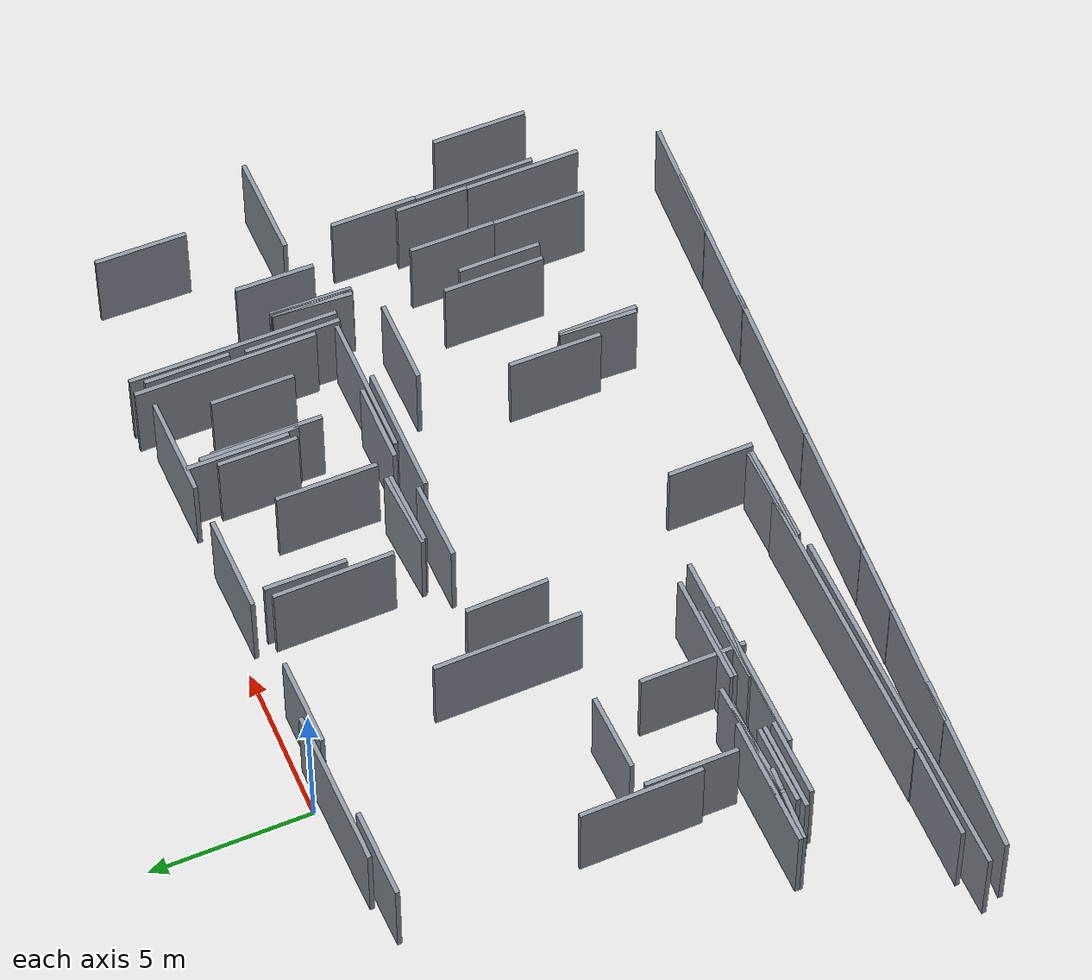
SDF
<sdf version="1.9">
 <world name="qianli_bupt_shahe_public_teaching_floor1_approx">
  <model name="plan_wall_002">
   <static>true</static>
   <pose>-4.540 -15.910 1.400 0 0 0.017359</pose>
   <link name="link">
    <collision name="collision"><geometry><box><size>11.522 0.140 2.800</size></box></geometry></collision>
    <visual name="visual">
     <geometry><box><size>11.522 0.140 2.800</size></box></geometry>
     <material><ambient>0.55 0.58 0.62 1</ambient><diffuse>0.55 0.58 0.62 1</diffuse></material>
    </visual>
   </link>
  </model>
  <model name="plan_wall_005">
   <static>true</static>
   <pose>-1.580 -15.610 1.400 0 0 0.017314</pose>
   <link name="link">
    <collision name="collision"><geometry><box><size>9.241 0.140 2.800</size></box></geometry></collision>
    <visual name="visual">
     <geometry><box><size>9.241 0.140 2.800</size></box></geometry>
     <material><ambient>0.55 0.58 0.62 1</ambient><diffuse>0.55 0.58 0.62 1</diffuse></material>
    </visual>
   </link>
  </model>
  <model name="plan_wall_010">
   <static>true</static>
   <pose>14.200 -3.170 1.400 0 0 1.570796</pose>
   <link name="link">
    <collision name="collision"><geometry><box><size>6.520 0.140 2.800</size></box></geometry></collision>
    <visual name="visual">
     <geometry><box><size>6.520 0.140 2.800</size></box></geometry>
     <material><ambient>0.55 0.58 0.62 1</ambient><diffuse>0.55 0.58 0.62 1</diffuse></material>
    </visual>
   </link>
  </model>
  <model name="plan_wall_017">
   <static>true</static>
   <pose>-7.170 -16.790 1.400 0 0 -0.049083</pose>
   <link name="link">
    <collision name="collision"><geometry><box><size>5.707 0.140 2.800</size></box></geometry></collision>
    <visual name="visual">
     <geometry><box><size>5.707 0.140 2.800</size></box></geometry>
     <material><ambient>0.55 0.58 0.62 1</ambient><diffuse>0.55 0.58 0.62 1</diffuse></material>
    </visual>
   </link>
  </model>
  <model name="plan_wall_018">
   <static>true</static>
   <pose>13.700 -2.730 1.400 0 0 1.570796</pose>
   <link name="link">
    <collision name="collision"><geometry><box><size>5.680 0.140 2.800</size></box></geometry></collision>
    <visual name="visual">
     <geometry><box><size>5.680 0.140 2.800</size></box></geometry>
     <material><ambient>0.55 0.58 0.62 1</ambient><diffuse>0.55 0.58 0.62 1</diffuse></material>
    </visual>
   </link>
  </model>
  <model name="plan_wall_020">
   <static>true</static>
   <pose>12.290 -17.680 1.400 0 0 -0.048651</pose>
   <link name="link">
    <collision name="collision"><geometry><box><size>5.346 0.140 2.800</size></box></geometry></collision>
    <visual name="visual">
     <geometry><box><size>5.346 0.140 2.800</size></box></geometry>
     <material><ambient>0.55 0.58 0.62 1</ambient><diffuse>0.55 0.58 0.62 1</diffuse></material>
    </visual>
   </link>
  </model>
  <model name="plan_wall_021">
   <static>true</static>
   <pose>3.110 -17.260 1.400 0 0 -0.048651</pose>
   <link name="link">
    <collision name="collision"><geometry><box><size>5.346 0.140 2.800</size></box></geometry></collision>
    <visual name="visual">
     <geometry><box><size>5.346 0.140 2.800</size></box></geometry>
     <material><ambient>0.55 0.58 0.62 1</ambient><diffuse>0.55 0.58 0.62 1</diffuse></material>
    </visual>
   </link>
  </model>
  <model name="plan_wall_022">
   <static>true</static>
   <pose>-3.020 -16.980 1.400 0 0 -0.048833</pose>
   <link name="link">
    <collision name="collision"><geometry><box><size>5.326 0.140 2.800</size></box></geometry></collision>
    <visual name="visual">
     <geometry><box><size>5.326 0.140 2.800</size></box></geometry>
     <material><ambient>0.55 0.58 0.62 1</ambient><diffuse>0.55 0.58 0.62 1</diffuse></material>
    </visual>
   </link>
  </model>
  <model name="plan_wall_024">
   <static>true</static>
   <pose>7.460 -17.460 1.400 0 0 -0.048833</pose>
   <link name="link">
    <collision name="collision"><geometry><box><size>5.326 0.140 2.800</size></box></geometry></collision>
    <visual name="visual">
     <geometry><box><size>5.326 0.140 2.800</size></box></geometry>
     <material><ambient>0.55 0.58 0.62 1</ambient><diffuse>0.55 0.58 0.62 1</diffuse></material>
    </visual>
   </link>
  </model>
  <model name="plan_wall_029">
   <static>true</static>
   <pose>-1.050 -0.310 1.400 0 0 0.016063</pose>
   <link name="link">
    <collision name="collision"><geometry><box><size>4.981 0.140 2.800</size></box></geometry></collision>
    <visual name="visual">
     <geometry><box><size>4.981 0.140 2.800</size></box></geometry>
     <material><ambient>0.55 0.58 0.62 1</ambient><diffuse>0.55 0.58 0.62 1</diffuse></material>
    </visual>
   </link>
  </model>
  <model name="plan_wall_032">
   <static>true</static>
   <pose>-2.150 -12.530 1.400 0 0 0.016459</pose>
   <link name="link">
    <collision name="collision"><geometry><box><size>4.861 0.140 2.800</size></box></geometry></collision>
    <visual name="visual">
     <geometry><box><size>4.861 0.140 2.800</size></box></geometry>
     <material><ambient>0.55 0.58 0.62 1</ambient><diffuse>0.55 0.58 0.62 1</diffuse></material>
    </visual>
   </link>
  </model>
  <model name="plan_wall_034">
   <static>true</static>
   <pose>11.410 -6.250 1.400 0 0 0.000000</pose>
   <link name="link">
    <collision name="collision"><geometry><box><size>4.620 0.140 2.800</size></box></geometry></collision>
    <visual name="visual">
     <geometry><box><size>4.620 0.140 2.800</size></box></geometry>
     <material><ambient>0.55 0.58 0.62 1</ambient><diffuse>0.55 0.58 0.62 1</diffuse></material>
    </visual>
   </link>
  </model>
  <model name="plan_wall_036">
   <static>true</static>
   <pose>1.560 -6.600 1.400 0 0 -1.553331</pose>
   <link name="link">
    <collision name="collision"><geometry><box><size>4.581 0.140 2.800</size></box></geometry></collision>
    <visual name="visual">
     <geometry><box><size>4.581 0.140 2.800</size></box></geometry>
     <material><ambient>0.55 0.58 0.62 1</ambient><diffuse>0.55 0.58 0.62 1</diffuse></material>
    </visual>
   </link>
  </model>
  <model name="plan_wall_042">
   <static>true</static>
   <pose>0.490 -17.140 1.400 0 0 -0.049287</pose>
   <link name="link">
    <collision name="collision"><geometry><box><size>4.465 0.140 2.800</size></box></geometry></collision>
    <visual name="visual">
     <geometry><box><size>4.465 0.140 2.800</size></box></geometry>
     <material><ambient>0.55 0.58 0.62 1</ambient><diffuse>0.55 0.58 0.62 1</diffuse></material>
    </visual>
   </link>
  </model>
  <model name="plan_wall_045">
   <static>true</static>
   <pose>-2.390 -12.500 1.400 0 0 0.013698</pose>
   <link name="link">
    <collision name="collision"><geometry><box><size>4.380 0.140 2.800</size></box></geometry></collision>
    <visual name="visual">
     <geometry><box><size>4.380 0.140 2.800</size></box></geometry>
     <material><ambient>0.55 0.58 0.62 1</ambient><diffuse>0.55 0.58 0.62 1</diffuse></material>
    </visual>
   </link>
  </model>
  <model name="plan_wall_049">
   <static>true</static>
   <pose>9.550 -6.510 1.400 0 0 0.000000</pose>
   <link name="link">
    <collision name="collision"><geometry><box><size>4.180 0.140 2.800</size></box></geometry></collision>
    <visual name="visual">
     <geometry><box><size>4.180 0.140 2.800</size></box></geometry>
     <material><ambient>0.55 0.58 0.62 1</ambient><diffuse>0.55 0.58 0.62 1</diffuse></material>
    </visual>
   </link>
  </model>
  <model name="plan_wall_051">
   <static>true</static>
   <pose>-0.140 -12.400 1.400 0 0 0.014422</pose>
   <link name="link">
    <collision name="collision"><geometry><box><size>4.160 0.140 2.800</size></box></geometry></collision>
    <visual name="visual">
     <geometry><box><size>4.160 0.140 2.800</size></box></geometry>
     <material><ambient>0.55 0.58 0.62 1</ambient><diffuse>0.55 0.58 0.62 1</diffuse></material>
    </visual>
   </link>
  </model>
  <model name="plan_wall_052">
   <static>true</static>
   <pose>-5.550 -11.480 1.400 0 0 0.014492</pose>
   <link name="link">
    <collision name="collision"><geometry><box><size>4.140 0.140 2.800</size></box></geometry></collision>
    <visual name="visual">
     <geometry><box><size>4.140 0.140 2.800</size></box></geometry>
     <material><ambient>0.55 0.58 0.62 1</ambient><diffuse>0.55 0.58 0.62 1</diffuse></material>
    </visual>
   </link>
  </model>
  <model name="plan_wall_056">
   <static>true</static>
   <pose>14.700 -17.790 1.400 0 0 -0.049465</pose>
   <link name="link">
    <collision name="collision"><geometry><box><size>4.045 0.140 2.800</size></box></geometry></collision>
    <visual name="visual">
     <geometry><box><size>4.045 0.140 2.800</size></box></geometry>
     <material><ambient>0.55 0.58 0.62 1</ambient><diffuse>0.55 0.58 0.62 1</diffuse></material>
    </visual>
   </link>
  </model>
  <model name="plan_wall_062">
   <static>true</static>
   <pose>-4.160 -11.590 1.400 0 0 0.052583</pose>
   <link name="link">
    <collision name="collision"><geometry><box><size>3.805 0.140 2.800</size></box></geometry></collision>
    <visual name="visual">
     <geometry><box><size>3.805 0.140 2.800</size></box></geometry>
     <material><ambient>0.55 0.58 0.62 1</ambient><diffuse>0.55 0.58 0.62 1</diffuse></material>
    </visual>
   </link>
  </model>
  <model name="plan_wall_063">
   <static>true</static>
   <pose>-4.510 -8.080 1.400 0 0 -1.554925</pose>
   <link name="link">
    <collision name="collision"><geometry><box><size>3.780 0.140 2.800</size></box></geometry></collision>
    <visual name="visual">
     <geometry><box><size>3.780 0.140 2.800</size></box></geometry>
     <material><ambient>0.55 0.58 0.62 1</ambient><diffuse>0.55 0.58 0.62 1</diffuse></material>
    </visual>
   </link>
  </model>
  <model name="plan_wall_064">
   <static>true</static>
   <pose>17.220 -12.060 1.400 0 0 1.570796</pose>
   <link name="link">
    <collision name="collision"><geometry><box><size>3.780 0.140 2.800</size></box></geometry></collision>
    <visual name="visual">
     <geometry><box><size>3.780 0.140 2.800</size></box></geometry>
     <material><ambient>0.55 0.58 0.62 1</ambient><diffuse>0.55 0.58 0.62 1</diffuse></material>
    </visual>
   </link>
  </model>
  <model name="plan_wall_065">
   <static>true</static>
   <pose>5.570 -2.900 1.400 0 0 -1.554755</pose>
   <link name="link">
    <collision name="collision"><geometry><box><size>3.740 0.140 2.800</size></box></geometry></collision>
    <visual name="visual">
     <geometry><box><size>3.740 0.140 2.800</size></box></geometry>
     <material><ambient>0.55 0.58 0.62 1</ambient><diffuse>0.55 0.58 0.62 1</diffuse></material>
    </visual>
   </link>
  </model>
  <model name="plan_wall_070">
   <static>true</static>
   <pose>16.980 -13.530 1.400 0 0 1.570796</pose>
   <link name="link">
    <collision name="collision"><geometry><box><size>3.600 0.140 2.800</size></box></geometry></collision>
    <visual name="visual">
     <geometry><box><size>3.600 0.140 2.800</size></box></geometry>
     <material><ambient>0.55 0.58 0.62 1</ambient><diffuse>0.55 0.58 0.62 1</diffuse></material>
    </visual>
   </link>
  </model>
  <model name="plan_wall_076">
   <static>true</static>
   <pose>-0.280 -11.900 1.400 0 0 0.017044</pose>
   <link name="link">
    <collision name="collision"><geometry><box><size>3.521 0.140 2.800</size></box></geometry></collision>
    <visual name="visual">
     <geometry><box><size>3.521 0.140 2.800</size></box></geometry>
     <material><ambient>0.55 0.58 0.62 1</ambient><diffuse>0.55 0.58 0.62 1</diffuse></material>
    </visual>
   </link>
  </model>
  <model name="plan_wall_082">
   <static>true</static>
   <pose>10.840 -2.900 1.400 0 0 1.570796</pose>
   <link name="link">
    <collision name="collision"><geometry><box><size>3.460 0.140 2.800</size></box></geometry></collision>
    <visual name="visual">
     <geometry><box><size>3.460 0.140 2.800</size></box></geometry>
     <material><ambient>0.55 0.58 0.62 1</ambient><diffuse>0.55 0.58 0.62 1</diffuse></material>
    </visual>
   </link>
  </model>
  <model name="plan_wall_089">
   <static>true</static>
   <pose>18.730 -5.910 1.400 0 0 0.012121</pose>
   <link name="link">
    <collision name="collision"><geometry><box><size>3.300 0.140 2.800</size></box></geometry></collision>
    <visual name="visual">
     <geometry><box><size>3.300 0.140 2.800</size></box></geometry>
     <material><ambient>0.55 0.58 0.62 1</ambient><diffuse>0.55 0.58 0.62 1</diffuse></material>
    </visual>
   </link>
  </model>
  <model name="plan_wall_091">
   <static>true</static>
   <pose>17.000 -11.120 1.400 0 0 1.570796</pose>
   <link name="link">
    <collision name="collision"><geometry><box><size>3.300 0.140 2.800</size></box></geometry></collision>
    <visual name="visual">
     <geometry><box><size>3.300 0.140 2.800</size></box></geometry>
     <material><ambient>0.55 0.58 0.62 1</ambient><diffuse>0.55 0.58 0.62 1</diffuse></material>
    </visual>
   </link>
  </model>
  <model name="plan_wall_093">
   <static>true</static>
   <pose>-4.430 -11.540 1.400 0 0 -0.018403</pose>
   <link name="link">
    <collision name="collision"><geometry><box><size>3.261 0.140 2.800</size></box></geometry></collision>
    <visual name="visual">
     <geometry><box><size>3.261 0.140 2.800</size></box></geometry>
     <material><ambient>0.55 0.58 0.62 1</ambient><diffuse>0.55 0.58 0.62 1</diffuse></material>
    </visual>
   </link>
  </model>
  <model name="plan_wall_094">
   <static>true</static>
   <pose>-1.140 -11.120 1.400 0 0 -1.558527</pose>
   <link name="link">
    <collision name="collision"><geometry><box><size>3.260 0.140 2.800</size></box></geometry></collision>
    <visual name="visual">
     <geometry><box><size>3.260 0.140 2.800</size></box></geometry>
     <material><ambient>0.55 0.58 0.62 1</ambient><diffuse>0.55 0.58 0.62 1</diffuse></material>
    </visual>
   </link>
  </model>
  <model name="plan_wall_096">
   <static>true</static>
   <pose>11.520 -0.330 1.400 0 0 0.012345</pose>
   <link name="link">
    <collision name="collision"><geometry><box><size>3.240 0.140 2.800</size></box></geometry></collision>
    <visual name="visual">
     <geometry><box><size>3.240 0.140 2.800</size></box></geometry>
     <material><ambient>0.55 0.58 0.62 1</ambient><diffuse>0.55 0.58 0.62 1</diffuse></material>
    </visual>
   </link>
  </model>
  <model name="plan_wall_097">
   <static>true</static>
   <pose>3.230 -15.630 1.400 0 0 0.012422</pose>
   <link name="link">
    <collision name="collision"><geometry><box><size>3.220 0.140 2.800</size></box></geometry></collision>
    <visual name="visual">
     <geometry><box><size>3.220 0.140 2.800</size></box></geometry>
     <material><ambient>0.55 0.58 0.62 1</ambient><diffuse>0.55 0.58 0.62 1</diffuse></material>
    </visual>
   </link>
  </model>
  <model name="plan_wall_099">
   <static>true</static>
   <pose>10.640 -1.940 1.400 0 0 1.570796</pose>
   <link name="link">
    <collision name="collision"><geometry><box><size>3.180 0.140 2.800</size></box></geometry></collision>
    <visual name="visual">
     <geometry><box><size>3.180 0.140 2.800</size></box></geometry>
     <material><ambient>0.55 0.58 0.62 1</ambient><diffuse>0.55 0.58 0.62 1</diffuse></material>
    </visual>
   </link>
  </model>
  <model name="plan_wall_100">
   <static>true</static>
   <pose>13.680 -11.230 1.400 0 0 1.570796</pose>
   <link name="link">
    <collision name="collision"><geometry><box><size>3.160 0.140 2.800</size></box></geometry></collision>
    <visual name="visual">
     <geometry><box><size>3.160 0.140 2.800</size></box></geometry>
     <material><ambient>0.55 0.58 0.62 1</ambient><diffuse>0.55 0.58 0.62 1</diffuse></material>
    </visual>
   </link>
  </model>
  <model name="plan_wall_102">
   <static>true</static>
   <pose>8.640 -3.910 1.400 0 0 1.570796</pose>
   <link name="link">
    <collision name="collision"><geometry><box><size>3.160 0.140 2.800</size></box></geometry></collision>
    <visual name="visual">
     <geometry><box><size>3.160 0.140 2.800</size></box></geometry>
     <material><ambient>0.55 0.58 0.62 1</ambient><diffuse>0.55 0.58 0.62 1</diffuse></material>
    </visual>
   </link>
  </model>
  <model name="plan_wall_107">
   <static>true</static>
   <pose>7.050 -0.390 1.400 0 0 0.012903</pose>
   <link name="link">
    <collision name="collision"><geometry><box><size>3.100 0.140 2.800</size></box></geometry></collision>
    <visual name="visual">
     <geometry><box><size>3.100 0.140 2.800</size></box></geometry>
     <material><ambient>0.55 0.58 0.62 1</ambient><diffuse>0.55 0.58 0.62 1</diffuse></material>
    </visual>
   </link>
  </model>
  <model name="plan_wall_108">
   <static>true</static>
   <pose>10.780 -2.340 1.400 0 0 1.570796</pose>
   <link name="link">
    <collision name="collision"><geometry><box><size>3.060 0.140 2.800</size></box></geometry></collision>
    <visual name="visual">
     <geometry><box><size>3.060 0.140 2.800</size></box></geometry>
     <material><ambient>0.55 0.58 0.62 1</ambient><diffuse>0.55 0.58 0.62 1</diffuse></material>
    </visual>
   </link>
  </model>
  <model name="plan_wall_111">
   <static>true</static>
   <pose>3.320 -15.560 1.400 0 0 0.019997</pose>
   <link name="link">
    <collision name="collision"><geometry><box><size>3.001 0.140 2.800</size></box></geometry></collision>
    <visual name="visual">
     <geometry><box><size>3.001 0.140 2.800</size></box></geometry>
     <material><ambient>0.55 0.58 0.62 1</ambient><diffuse>0.55 0.58 0.62 1</diffuse></material>
    </visual>
   </link>
  </model>
  <model name="plan_wall_114">
   <static>true</static>
   <pose>13.900 -4.920 1.400 0 0 1.570796</pose>
   <link name="link">
    <collision name="collision"><geometry><box><size>2.980 0.140 2.800</size></box></geometry></collision>
    <visual name="visual">
     <geometry><box><size>2.980 0.140 2.800</size></box></geometry>
     <material><ambient>0.55 0.58 0.62 1</ambient><diffuse>0.55 0.58 0.62 1</diffuse></material>
    </visual>
   </link>
  </model>
  <model name="plan_wall_115">
   <static>true</static>
   <pose>18.980 -12.960 1.400 0 0 1.570796</pose>
   <link name="link">
    <collision name="collision"><geometry><box><size>2.980 0.140 2.800</size></box></geometry></collision>
    <visual name="visual">
     <geometry><box><size>2.980 0.140 2.800</size></box></geometry>
     <material><ambient>0.55 0.58 0.62 1</ambient><diffuse>0.55 0.58 0.62 1</diffuse></material>
    </visual>
   </link>
  </model>
  <model name="plan_wall_116">
   <static>true</static>
   <pose>-7.710 -15.710 1.400 0 0 0.000000</pose>
   <link name="link">
    <collision name="collision"><geometry><box><size>2.980 0.140 2.800</size></box></geometry></collision>
    <visual name="visual">
     <geometry><box><size>2.980 0.140 2.800</size></box></geometry>
     <material><ambient>0.55 0.58 0.62 1</ambient><diffuse>0.55 0.58 0.62 1</diffuse></material>
    </visual>
   </link>
  </model>
  <model name="plan_wall_120">
   <static>true</static>
   <pose>15.440 -13.430 1.400 0 0 1.570796</pose>
   <link name="link">
    <collision name="collision"><geometry><box><size>2.920 0.140 2.800</size></box></geometry></collision>
    <visual name="visual">
     <geometry><box><size>2.920 0.140 2.800</size></box></geometry>
     <material><ambient>0.55 0.58 0.62 1</ambient><diffuse>0.55 0.58 0.62 1</diffuse></material>
    </visual>
   </link>
  </model>
  <model name="plan_wall_123">
   <static>true</static>
   <pose>10.420 -11.820 1.400 0 0 1.570796</pose>
   <link name="link">
    <collision name="collision"><geometry><box><size>2.900 0.140 2.800</size></box></geometry></collision>
    <visual name="visual">
     <geometry><box><size>2.900 0.140 2.800</size></box></geometry>
     <material><ambient>0.55 0.58 0.62 1</ambient><diffuse>0.55 0.58 0.62 1</diffuse></material>
    </visual>
   </link>
  </model>
  <model name="plan_wall_125">
   <static>true</static>
   <pose>-4.300 -9.690 1.400 0 0 -1.556908</pose>
   <link name="link">
    <collision name="collision"><geometry><box><size>2.880 0.140 2.800</size></box></geometry></collision>
    <visual name="visual">
     <geometry><box><size>2.880 0.140 2.800</size></box></geometry>
     <material><ambient>0.55 0.58 0.62 1</ambient><diffuse>0.55 0.58 0.62 1</diffuse></material>
    </visual>
   </link>
  </model>
  <model name="plan_wall_129">
   <static>true</static>
   <pose>18.660 -1.940 1.400 0 0 1.556811</pose>
   <link name="link">
    <collision name="collision"><geometry><box><size>2.860 0.140 2.800</size></box></geometry></collision>
    <visual name="visual">
     <geometry><box><size>2.860 0.140 2.800</size></box></geometry>
     <material><ambient>0.55 0.58 0.62 1</ambient><diffuse>0.55 0.58 0.62 1</diffuse></material>
    </visual>
   </link>
  </model>
  <model name="plan_wall_135">
   <static>true</static>
   <pose>-5.290 -12.110 1.400 0 0 0.014183</pose>
   <link name="link">
    <collision name="collision"><geometry><box><size>2.820 0.140 2.800</size></box></geometry></collision>
    <visual name="visual">
     <geometry><box><size>2.820 0.140 2.800</size></box></geometry>
     <material><ambient>0.55 0.58 0.62 1</ambient><diffuse>0.55 0.58 0.62 1</diffuse></material>
    </visual>
   </link>
  </model>
  <model name="plan_wall_136">
   <static>true</static>
   <pose>3.070 -15.650 1.400 0 0 0.014183</pose>
   <link name="link">
    <collision name="collision"><geometry><box><size>2.820 0.140 2.800</size></box></geometry></collision>
    <visual name="visual">
     <geometry><box><size>2.820 0.140 2.800</size></box></geometry>
     <material><ambient>0.55 0.58 0.62 1</ambient><diffuse>0.55 0.58 0.62 1</diffuse></material>
    </visual>
   </link>
  </model>
  <model name="plan_wall_139">
   <static>true</static>
   <pose>1.900 -0.530 1.400 0 0 0.014285</pose>
   <link name="link">
    <collision name="collision"><geometry><box><size>2.800 0.140 2.800</size></box></geometry></collision>
    <visual name="visual">
     <geometry><box><size>2.800 0.140 2.800</size></box></geometry>
     <material><ambient>0.55 0.58 0.62 1</ambient><diffuse>0.55 0.58 0.62 1</diffuse></material>
    </visual>
   </link>
  </model>
  <model name="plan_wall_140">
   <static>true</static>
   <pose>-3.480 -0.610 1.400 0 0 0.014285</pose>
   <link name="link">
    <collision name="collision"><geometry><box><size>2.800 0.140 2.800</size></box></geometry></collision>
    <visual name="visual">
     <geometry><box><size>2.800 0.140 2.800</size></box></geometry>
     <material><ambient>0.55 0.58 0.62 1</ambient><diffuse>0.55 0.58 0.62 1</diffuse></material>
    </visual>
   </link>
  </model>
  <model name="plan_wall_147">
   <static>true</static>
   <pose>12.470 -7.770 1.400 0 0 0.000000</pose>
   <link name="link">
    <collision name="collision"><geometry><box><size>2.740 0.140 2.800</size></box></geometry></collision>
    <visual name="visual">
     <geometry><box><size>2.740 0.140 2.800</size></box></geometry>
     <material><ambient>0.55 0.58 0.62 1</ambient><diffuse>0.55 0.58 0.62 1</diffuse></material>
    </visual>
   </link>
  </model>
  <model name="plan_wall_150">
   <static>true</static>
   <pose>17.240 -8.820 1.400 0 0 1.570796</pose>
   <link name="link">
    <collision name="collision"><geometry><box><size>2.700 0.140 2.800</size></box></geometry></collision>
    <visual name="visual">
     <geometry><box><size>2.700 0.140 2.800</size></box></geometry>
     <material><ambient>0.55 0.58 0.62 1</ambient><diffuse>0.55 0.58 0.62 1</diffuse></material>
    </visual>
   </link>
  </model>
  <model name="plan_wall_154">
   <static>true</static>
   <pose>15.460 -10.630 1.400 0 0 1.570796</pose>
   <link name="link">
    <collision name="collision"><geometry><box><size>2.680 0.140 2.800</size></box></geometry></collision>
    <visual name="visual">
     <geometry><box><size>2.680 0.140 2.800</size></box></geometry>
     <material><ambient>0.55 0.58 0.62 1</ambient><diffuse>0.55 0.58 0.62 1</diffuse></material>
    </visual>
   </link>
  </model>
  <model name="plan_wall_156">
   <static>true</static>
   <pose>5.040 -14.420 1.400 0 0 -1.555760</pose>
   <link name="link">
    <collision name="collision"><geometry><box><size>2.660 0.140 2.800</size></box></geometry></collision>
    <visual name="visual">
     <geometry><box><size>2.660 0.140 2.800</size></box></geometry>
     <material><ambient>0.55 0.58 0.62 1</ambient><diffuse>0.55 0.58 0.62 1</diffuse></material>
    </visual>
   </link>
  </model>
  <model name="plan_wall_159">
   <static>true</static>
   <pose>14.000 -1.640 1.400 0 0 1.570796</pose>
   <link name="link">
    <collision name="collision"><geometry><box><size>2.660 0.140 2.800</size></box></geometry></collision>
    <visual name="visual">
     <geometry><box><size>2.660 0.140 2.800</size></box></geometry>
     <material><ambient>0.55 0.58 0.62 1</ambient><diffuse>0.55 0.58 0.62 1</diffuse></material>
    </visual>
   </link>
  </model>
  <model name="plan_wall_171">
   <static>true</static>
   <pose>12.540 -3.130 1.400 0 0 1.570796</pose>
   <link name="link">
    <collision name="collision"><geometry><box><size>2.600 0.140 2.800</size></box></geometry></collision>
    <visual name="visual">
     <geometry><box><size>2.600 0.140 2.800</size></box></geometry>
     <material><ambient>0.55 0.58 0.62 1</ambient><diffuse>0.55 0.58 0.62 1</diffuse></material>
    </visual>
   </link>
  </model>
  <model name="plan_wall_178">
   <static>true</static>
   <pose>14.200 -11.620 1.400 0 0 1.570796</pose>
   <link name="link">
    <collision name="collision"><geometry><box><size>2.580 0.140 2.800</size></box></geometry></collision>
    <visual name="visual">
     <geometry><box><size>2.580 0.140 2.800</size></box></geometry>
     <material><ambient>0.55 0.58 0.62 1</ambient><diffuse>0.55 0.58 0.62 1</diffuse></material>
    </visual>
   </link>
  </model>
  <model name="plan_wall_179">
   <static>true</static>
   <pose>2.980 -7.170 1.400 0 0 -1.539556</pose>
   <link name="link">
    <collision name="collision"><geometry><box><size>2.561 0.140 2.800</size></box></geometry></collision>
    <visual name="visual">
     <geometry><box><size>2.561 0.140 2.800</size></box></geometry>
     <material><ambient>0.55 0.58 0.62 1</ambient><diffuse>0.55 0.58 0.62 1</diffuse></material>
    </visual>
   </link>
  </model>
  <model name="plan_wall_181">
   <static>true</static>
   <pose>14.860 -5.870 1.400 0 0 1.555173</pose>
   <link name="link">
    <collision name="collision"><geometry><box><size>2.560 0.140 2.800</size></box></geometry></collision>
    <visual name="visual">
     <geometry><box><size>2.560 0.140 2.800</size></box></geometry>
     <material><ambient>0.55 0.58 0.62 1</ambient><diffuse>0.55 0.58 0.62 1</diffuse></material>
    </visual>
   </link>
  </model>
  <model name="plan_wall_182">
   <static>true</static>
   <pose>10.000 -6.070 1.400 0 0 0.000000</pose>
   <link name="link">
    <collision name="collision"><geometry><box><size>2.560 0.140 2.800</size></box></geometry></collision>
    <visual name="visual">
     <geometry><box><size>2.560 0.140 2.800</size></box></geometry>
     <material><ambient>0.55 0.58 0.62 1</ambient><diffuse>0.55 0.58 0.62 1</diffuse></material>
    </visual>
   </link>
  </model>
  <model name="plan_wall_185">
   <static>true</static>
   <pose>14.780 -5.880 1.400 0 0 1.539311</pose>
   <link name="link">
    <collision name="collision"><geometry><box><size>2.541 0.140 2.800</size></box></geometry></collision>
    <visual name="visual">
     <geometry><box><size>2.541 0.140 2.800</size></box></geometry>
     <material><ambient>0.55 0.58 0.62 1</ambient><diffuse>0.55 0.58 0.62 1</diffuse></material>
    </visual>
   </link>
  </model>
  <model name="plan_wall_186">
   <static>true</static>
   <pose>6.170 -6.290 1.400 0 0 0.015747</pose>
   <link name="link">
    <collision name="collision"><geometry><box><size>2.540 0.140 2.800</size></box></geometry></collision>
    <visual name="visual">
     <geometry><box><size>2.540 0.140 2.800</size></box></geometry>
     <material><ambient>0.55 0.58 0.62 1</ambient><diffuse>0.55 0.58 0.62 1</diffuse></material>
    </visual>
   </link>
  </model>
  <model name="plan_wall_187">
   <static>true</static>
   <pose>-5.170 -11.950 1.400 0 0 0.015747</pose>
   <link name="link">
    <collision name="collision"><geometry><box><size>2.540 0.140 2.800</size></box></geometry></collision>
    <visual name="visual">
     <geometry><box><size>2.540 0.140 2.800</size></box></geometry>
     <material><ambient>0.55 0.58 0.62 1</ambient><diffuse>0.55 0.58 0.62 1</diffuse></material>
    </visual>
   </link>
  </model>
  <model name="plan_wall_188">
   <static>true</static>
   <pose>5.880 -2.160 1.400 0 0 1.570796</pose>
   <link name="link">
    <collision name="collision"><geometry><box><size>2.540 0.140 2.800</size></box></geometry></collision>
    <visual name="visual">
     <geometry><box><size>2.540 0.140 2.800</size></box></geometry>
     <material><ambient>0.55 0.58 0.62 1</ambient><diffuse>0.55 0.58 0.62 1</diffuse></material>
    </visual>
   </link>
  </model>
  <model name="plan_wall_192">
   <static>true</static>
   <pose>6.850 -5.600 1.400 0 0 0.055942</pose>
   <link name="link">
    <collision name="collision"><geometry><box><size>2.504 0.140 2.800</size></box></geometry></collision>
    <visual name="visual">
     <geometry><box><size>2.504 0.140 2.800</size></box></geometry>
     <material><ambient>0.55 0.58 0.62 1</ambient><diffuse>0.55 0.58 0.62 1</diffuse></material>
    </visual>
   </link>
  </model>
  <model name="plan_wall_193">
   <static>true</static>
   <pose>-5.090 -12.410 1.400 0 0 0.015999</pose>
   <link name="link">
    <collision name="collision"><geometry><box><size>2.500 0.140 2.800</size></box></geometry></collision>
    <visual name="visual">
     <geometry><box><size>2.500 0.140 2.800</size></box></geometry>
     <material><ambient>0.55 0.58 0.62 1</ambient><diffuse>0.55 0.58 0.62 1</diffuse></material>
    </visual>
   </link>
  </model>
  <model name="plan_wall_194">
   <static>true</static>
   <pose>10.920 -13.400 1.400 0 0 -1.554798</pose>
   <link name="link">
    <collision name="collision"><geometry><box><size>2.500 0.140 2.800</size></box></geometry></collision>
    <visual name="visual">
     <geometry><box><size>2.500 0.140 2.800</size></box></geometry>
     <material><ambient>0.55 0.58 0.62 1</ambient><diffuse>0.55 0.58 0.62 1</diffuse></material>
    </visual>
   </link>
  </model>
  <model name="plan_wall_198">
   <static>true</static>
   <pose>14.730 -5.870 1.400 0 0 1.514405</pose>
   <link name="link">
    <collision name="collision"><geometry><box><size>2.484 0.140 2.800</size></box></geometry></collision>
    <visual name="visual">
     <geometry><box><size>2.484 0.140 2.800</size></box></geometry>
     <material><ambient>0.55 0.58 0.62 1</ambient><diffuse>0.55 0.58 0.62 1</diffuse></material>
    </visual>
   </link>
  </model>
  <model name="plan_wall_202">
   <static>true</static>
   <pose>10.420 -2.470 1.400 0 0 1.570796</pose>
   <link name="link">
    <collision name="collision"><geometry><box><size>2.480 0.140 2.800</size></box></geometry></collision>
    <visual name="visual">
     <geometry><box><size>2.480 0.140 2.800</size></box></geometry>
     <material><ambient>0.55 0.58 0.62 1</ambient><diffuse>0.55 0.58 0.62 1</diffuse></material>
    </visual>
   </link>
  </model>
  <model name="plan_wall_205">
   <static>true</static>
   <pose>-2.410 -8.130 1.400 0 0 0.032509</pose>
   <link name="link">
    <collision name="collision"><geometry><box><size>2.461 0.140 2.800</size></box></geometry></collision>
    <visual name="visual">
     <geometry><box><size>2.461 0.140 2.800</size></box></geometry>
     <material><ambient>0.55 0.58 0.62 1</ambient><diffuse>0.55 0.58 0.62 1</diffuse></material>
    </visual>
   </link>
  </model>
  <model name="plan_wall_208">
   <static>true</static>
   <pose>16.080 -5.200 1.400 0 0 1.554538</pose>
   <link name="link">
    <collision name="collision"><geometry><box><size>2.460 0.140 2.800</size></box></geometry></collision>
    <visual name="visual">
     <geometry><box><size>2.460 0.140 2.800</size></box></geometry>
     <material><ambient>0.55 0.58 0.62 1</ambient><diffuse>0.55 0.58 0.62 1</diffuse></material>
    </visual>
   </link>
  </model>
  <model name="plan_wall_210">
   <static>true</static>
   <pose>10.840 -13.370 1.400 0 0 1.538021</pose>
   <link name="link">
    <collision name="collision"><geometry><box><size>2.441 0.140 2.800</size></box></geometry></collision>
    <visual name="visual">
     <geometry><box><size>2.441 0.140 2.800</size></box></geometry>
     <material><ambient>0.55 0.58 0.62 1</ambient><diffuse>0.55 0.58 0.62 1</diffuse></material>
    </visual>
   </link>
  </model>
  <model name="plan_wall_211">
   <static>true</static>
   <pose>-6.410 -11.670 1.400 0 0 -0.049546</pose>
   <link name="link">
    <collision name="collision"><geometry><box><size>2.423 0.140 2.800</size></box></geometry></collision>
    <visual name="visual">
     <geometry><box><size>2.423 0.140 2.800</size></box></geometry>
     <material><ambient>0.55 0.58 0.62 1</ambient><diffuse>0.55 0.58 0.62 1</diffuse></material>
    </visual>
   </link>
  </model>
  <model name="plan_wall_213">
   <static>true</static>
   <pose>6.890 -5.710 1.400 0 0 0.033046</pose>
   <link name="link">
    <collision name="collision"><geometry><box><size>2.421 0.140 2.800</size></box></geometry></collision>
    <visual name="visual">
     <geometry><box><size>2.421 0.140 2.800</size></box></geometry>
     <material><ambient>0.55 0.58 0.62 1</ambient><diffuse>0.55 0.58 0.62 1</diffuse></material>
    </visual>
   </link>
  </model>
  <model name="plan_wall_219">
   <static>true</static>
   <pose>-0.840 -12.010 1.400 0 0 0.016665</pose>
   <link name="link">
    <collision name="collision"><geometry><box><size>2.400 0.140 2.800</size></box></geometry></collision>
    <visual name="visual">
     <geometry><box><size>2.400 0.140 2.800</size></box></geometry>
     <material><ambient>0.55 0.58 0.62 1</ambient><diffuse>0.55 0.58 0.62 1</diffuse></material>
    </visual>
   </link>
  </model>
 </world>
</sdf>
